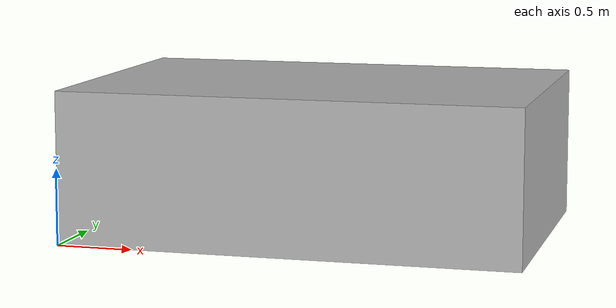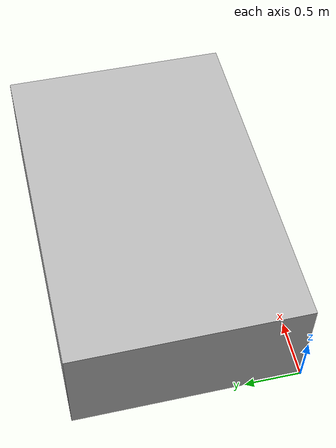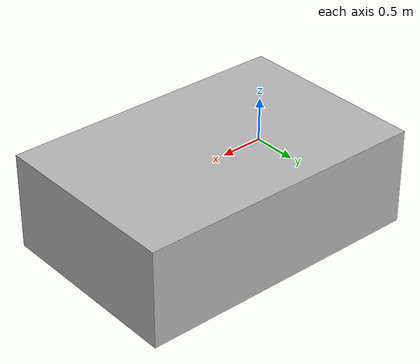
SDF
<sdf version='1.9'>
  <model name='cube'>
    <link name='body'>
      <inertial>
        <pose>1.5 1 0.5 0 0 0</pose>
        <mass>1</mass>
        <inertia>
          <ixx>0.41666</ixx>
          <ixy>0</ixy>
          <ixz>0</ixz>
          <iyy>0.83333</iyy>
          <iyz>0</iyz>
          <izz>1.08333</izz>
        </inertia>
      </inertial>
      <collision name='body_collision'>
        <pose>1.5 1 0.5 0 0 0</pose>
        <geometry>
          <box>
            <size>3 2 1</size>
          </box>
        </geometry>
      </collision>
      <visual name='body_visual'>
        <pose>1.5 1 0.5 0 0 0</pose>
        <geometry>
          <box>
            <size>3 2 1</size>
          </box>
        </geometry>
      </visual>
    </link>
  </model>
</sdf>
